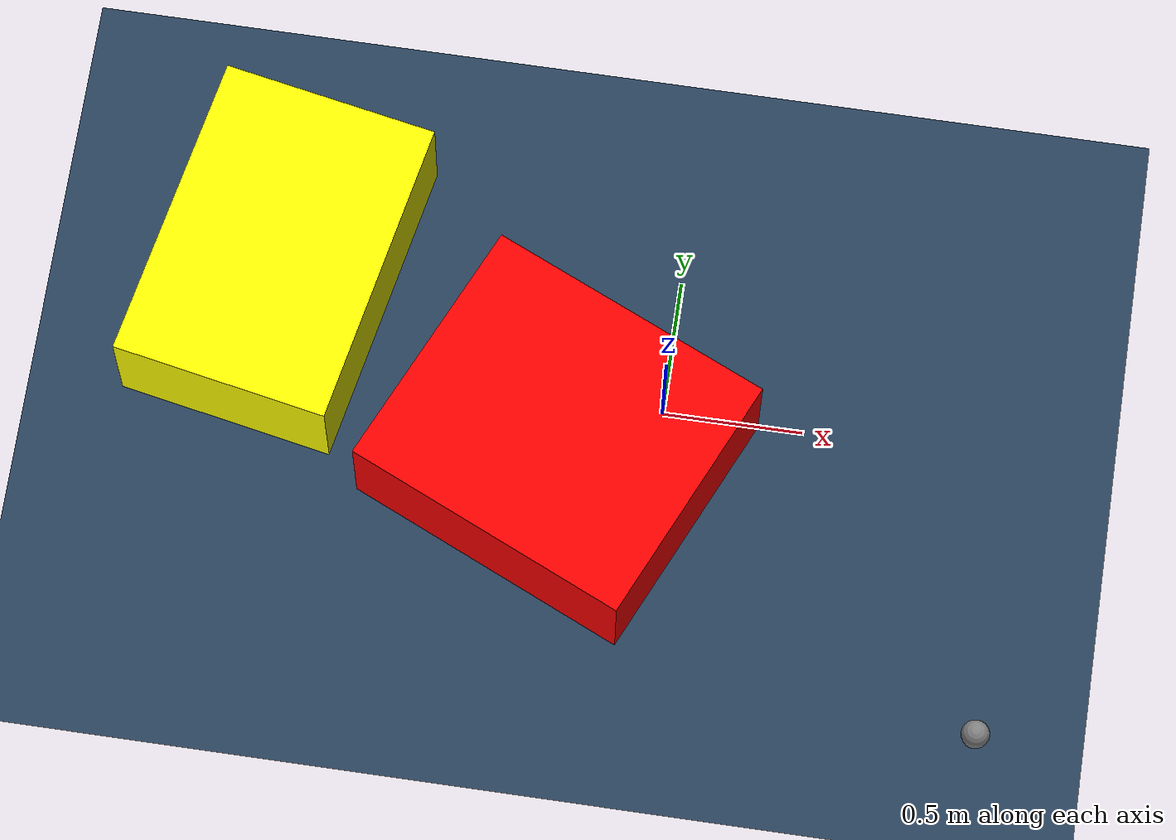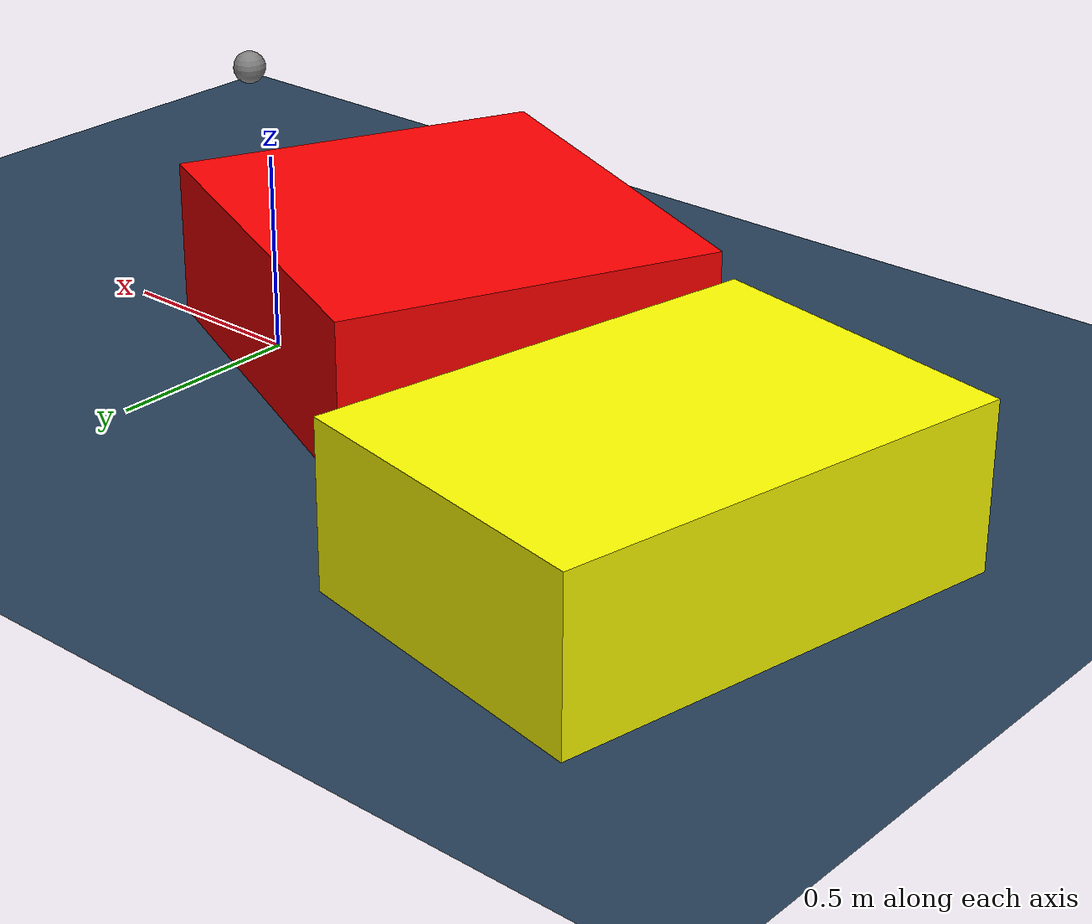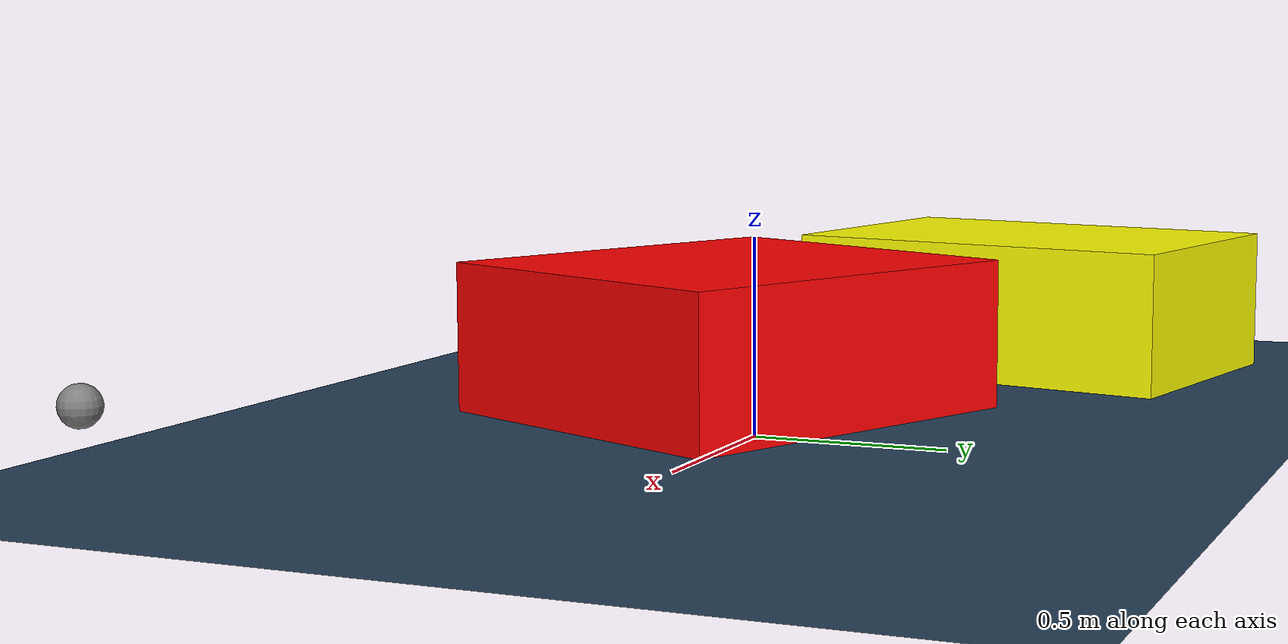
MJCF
<?xml version="1.0" ?>
<mujoco model="generated_environment">
  <option timestep="0.01" integrator="RK4" cone="elliptic"/>
  <default>
    <geom density="1"/>
  </default>
  <asset>
    <texture builtin="gradient" height="3072" rgb1="0.3 0.5 0.7" rgb2="0 0 0" type="skybox" width="512"/>
    <texture builtin="checker" height="300" mark="edge" markrgb="0.8 0.8 0.8" name="groundplane" rgb1="0.2 0.3 0.4" rgb2="0.1 0.2 0.3" type="2d" width="300"/>
    <material name="groundplane" reflectance="0.2" texrepeat="5 5" texture="groundplane" texuniform="true"/>
    <material name="robot" rgba="0.0 1.0 0.0 1"/>
  </asset>
  <worldbody>
    <light dir="0 0 -1" directional="true" pos="0 0 1.5"/>
    <geom condim="4" friction="1.0 0.005 0.001" material="groundplane" name="floor" size="0 0 0.05" type="plane"/>
    <body name="walls"/>
    <body name="robot">
      <joint name="joint_x" type="slide" pos="0 0 0" axis="1 0 0"/>
      <joint name="joint_y" type="slide" pos="0 0 0" axis="0 1 0"/>
      <geom name="robot" type="sphere" pos="1.2250482284600368 -1.0741143326080804 0.2" size="0.05" mass="5." friction="1.0 0.005 0.0001" condim="4"/>
      <site name="sensor_ball"/>
    </body>
    <body name="obstacle_1_movable">
      <geom name="obstacle_1_movable" condim="4" pos="-1.4331771679258436 0.30852274905263055 0.2" euler="0 0 169.14497222703113" friction="1.0 0.005 0.001" rgba="1 1 0 1" size="0.3933415507454693 0.5696539884253321 0.2" type="box" mass="0.1"/>
      <joint type="free"/>
    </body>
    <body name="obstacle_2_static">
      <geom name="obstacle_2_static" condim="4" pos="-0.34804633610596025 -0.22000893442905944 0.2" euler="0 0 245.91728178405552" friction="1.0 0.005 0.001" rgba="1 0 0 1" size="0.4792312352734254 0.5400944163841728 0.2" type="box"/>
    </body>
  </worldbody>
  <actuator>
    <motor name="actuator_x" joint="joint_x" gear="1" ctrlrange="-1 1"/>
    <motor name="actuator_y" joint="joint_y" gear="1" ctrlrange="-1 1"/>
  </actuator>
</mujoco>
